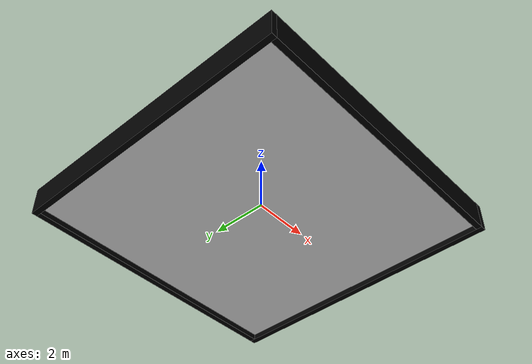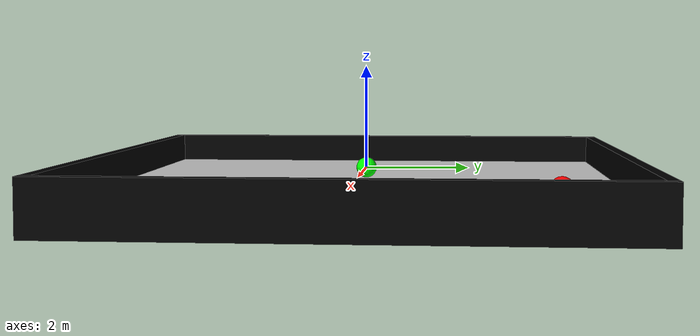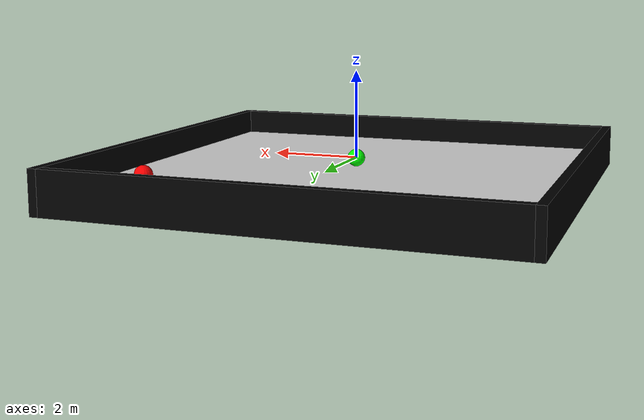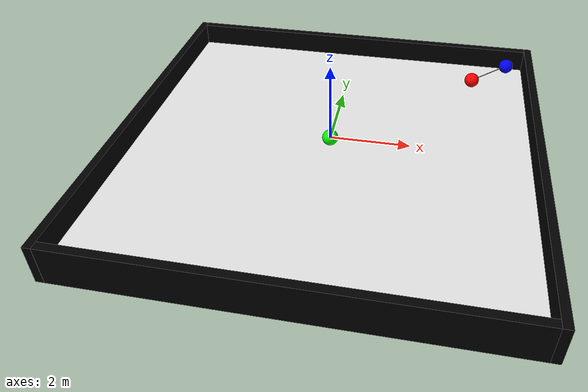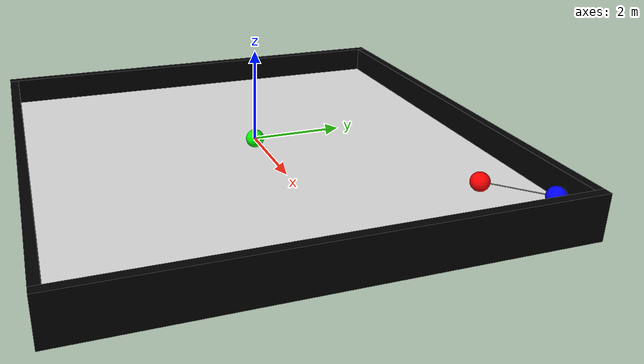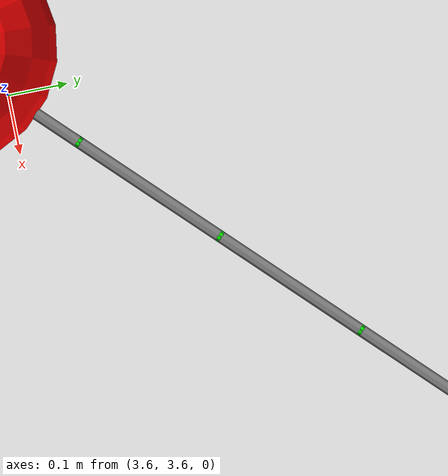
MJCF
<mujoco>
    <option gravity="0 0 0" timestep="0.005"/>
<default>
<geom rgba="0 0 0 1"/>
</default>
    <worldbody>
 	<light diffuse=".2 .2 .2" pos="0 0 20" dir="0 0 -1" mode="track"/>
	<body>
	  <geom name='floor' pos='0 0 -0.4' size='5 5 .1' mass="10000" type='box' condim='3' rgba=".9 .9 .9 1"/>
	</body>
	<body>
	  <geom name='wall1' pos='-5.1 0 -0.2' size='.1 5.1 .5' mass="10000" type='box' condim='3'/>
	</body>
	<body>
	  <geom name='wall2' pos='5.1 0 -0.2' size='.1 5.1 .5' mass="10000" type='box' condim='3'/>
	</body>
	<body>
	  <geom name='wall3' pos='0 -5 -0.2' size='5 .1 .5' mass="10000" type='box' condim='3'/>
	</body>
	<body>
	  <geom name='wall4' pos='0 5 -0.2' size='5 .1 .5' mass="10000" type='box' condim='3'/>
	</body>
        <body name="predator" pos="3.5 3.5 0">
            <joint axis="1 0 0" damping="0" name="predator0" pos="0 0 0" type="slide"/>
            <joint axis="0 1 0" damping="0" name="predator1" pos="0 0 0" type="slide"/>
            <geom type="sphere" size="0.2" mass="10" rgba="1 0 0 1"/>
    	    <site name="end1" pos="0 0 0" type="sphere" size="0.01"/>
        </body>

 	<body name="prey" pos="0 0 0">
            <joint axis="1 0 0" damping="0" name="prey0" pos="0 0 0" type="slide"/>
            <joint axis="0 1 0" damping="0" name="prey1" pos="0 0 0" type="slide"/>
            <geom type="sphere" size="0.2" mass="8" rgba="0 1 0 1"/>
        </body>

	<body name="dragger" pos="4.5 4.5 0">
            <joint axis="1 0 0" damping="0" name="dragger0" pos="0 0 0" type="slide"/>
            <joint axis="0 1 0" damping="0" name="dragger1" pos="0 0 0" type="slide"/>
            <geom type="sphere" size="0.2" mass="75" rgba="0 0 1 1"/>
 	    <site name="end2" pos="0 0 0" type="sphere" size="0.01"/>
        </body>

        <body pos="4.3 4.3 0">
		<joint axis="1 0 0" damping="0" name="middle4x" pos="0 0 0" type="slide"/>
                <joint axis="0 1 0" damping="0" name="middle4y" pos="0 0 0" type="slide"/>
		<geom type="sphere" size="0.01" mass="1" rgba="0 .9 0 1"/>
  		<site name="middle4" pos="0 0 0" type="sphere" size="0.01"/>
	</body>
	<body pos="4.1 4.1 0">
		<joint axis="1 0 0" damping="0" name="middle3x" pos="0 0 0" type="slide"/>
                <joint axis="0 1 0" damping="0" name="middle3y" pos="0 0 0" type="slide"/>
		<geom type="sphere" size="0.01" mass="1" rgba="0 .9 0 1"/>
  		<site name="middle3" pos="0 0 0" type="sphere" size="0.01"/>
	</body>
	<body pos="3.9 3.9 0">
		<joint axis="1 0 0" damping="0" name="middle2x" pos="0 0 0" type="slide"/>
                <joint axis="0 1 0" damping="0" name="middle2y" pos="0 0 0" type="slide"/>
		<geom type="sphere" size="0.01" mass="1" rgba="0 .9 0 1"/>
  		<site name="middle2" pos="0 0 0" type="sphere" size="0.01"/>
	</body>
	<body pos="3.7 3.7 0">
		<joint axis="1 0 0" damping="0" name="middle1x" pos="0 0 0" type="slide"/>
                <joint axis="0 1 0" damping="0" name="middle1y" pos="0 0 0" type="slide"/>
		<geom type="sphere" size="0.01" mass="1" rgba="0 .9 0 1"/>
  		<site name="middle1" pos="0 0 0" type="sphere" size="0.01"/>
	</body>
    </worldbody>

    <tendon>
        <spatial limited="true" range="0 .75" stiffness="10" damping=".6" width="0.01">
            <site site="end1"/>
            <site site="middle1"/>
        </spatial>
    </tendon>
    <tendon>
        <spatial limited="true" range="0 .75" stiffness="10" damping=".6" width="0.01">
            <site site="middle1"/>
            <site site="middle2"/>
        </spatial>
    </tendon>
    <tendon>
        <spatial limited="true" range="0 .75" stiffness="10" damping=".6" width="0.01">
            <site site="middle2"/>
            <site site="middle3"/>
        </spatial>
    </tendon>
    <tendon>
        <spatial limited="true" range="0 .75" stiffness="10" damping=".6" width="0.01">
            <site site="middle3"/>
            <site site="middle4"/>
        </spatial>
    </tendon>
    <tendon>
        <spatial limited="true" range="0 .75" stiffness="10" damping=".6" width="0.01">
            <site site="middle4"/>
            <site site="end2"/>
        </spatial>
    </tendon>

    <actuator>
        <motor gear="1" joint="predator0"/>
        <motor gear="1" joint="predator1"/>

        <motor gear="1" joint="prey0"/>
        <motor gear="1" joint="prey1"/>

        <motor gear="1" joint="dragger0"/>
        <motor gear="1" joint="dragger1"/>
    </actuator>
</mujoco>.
